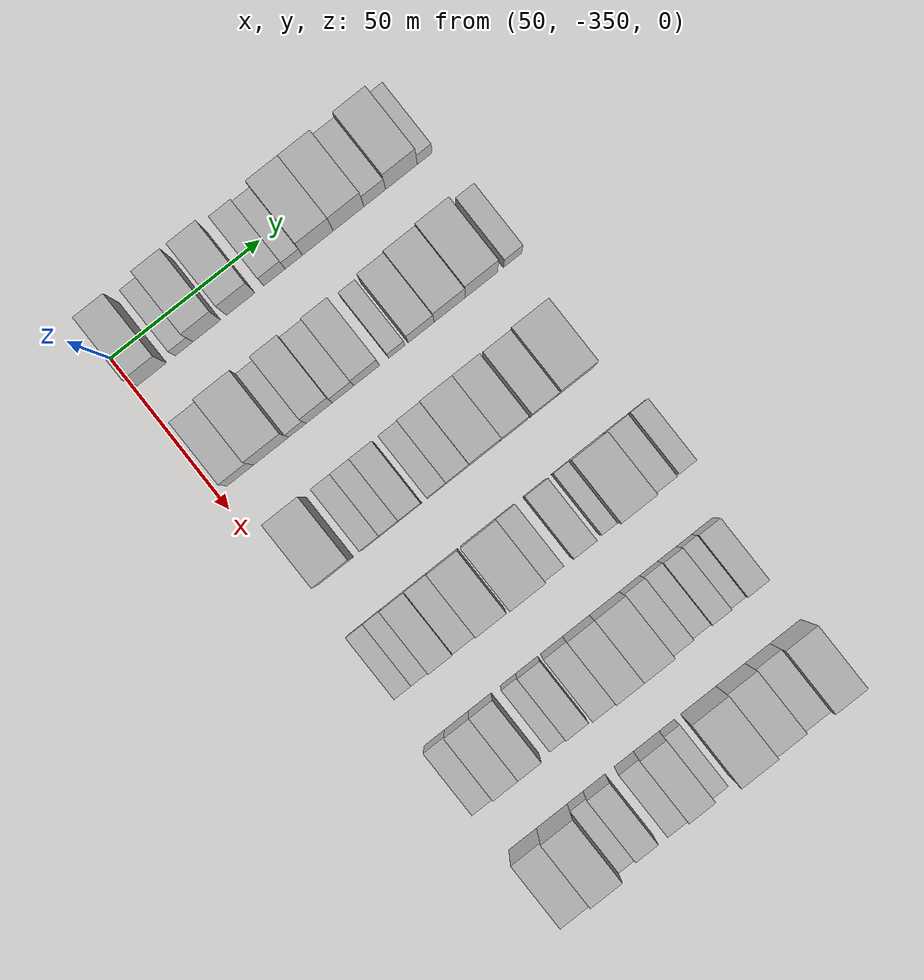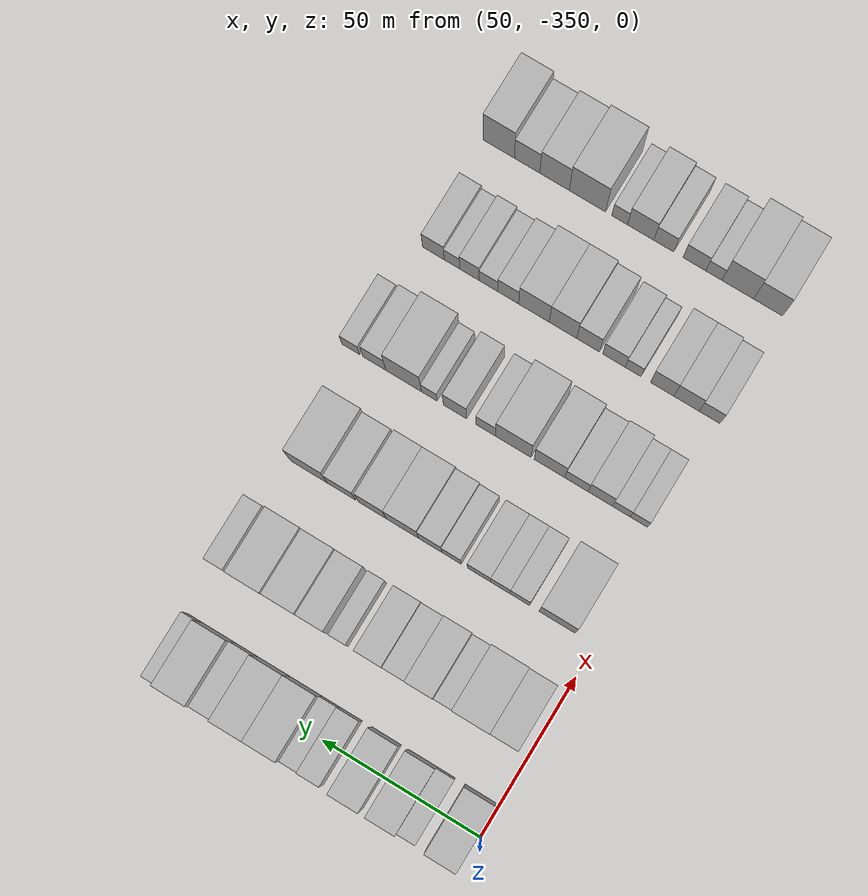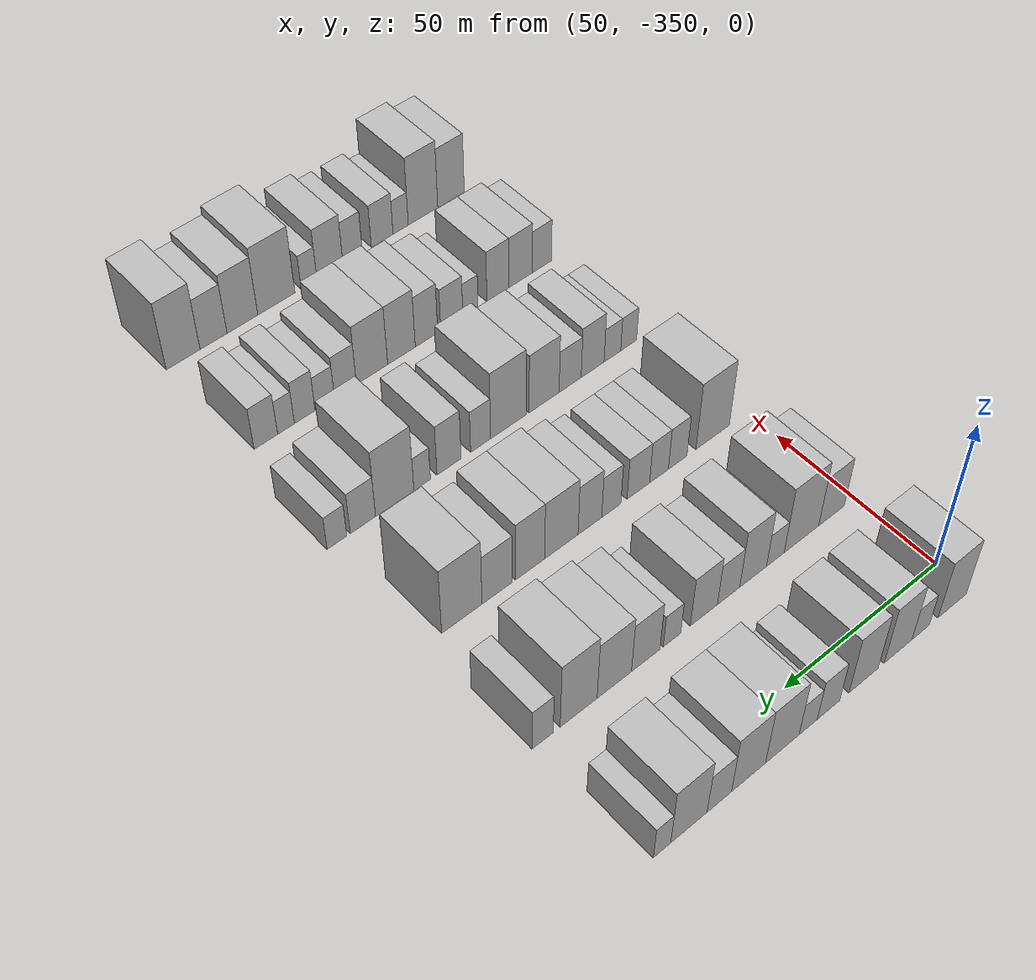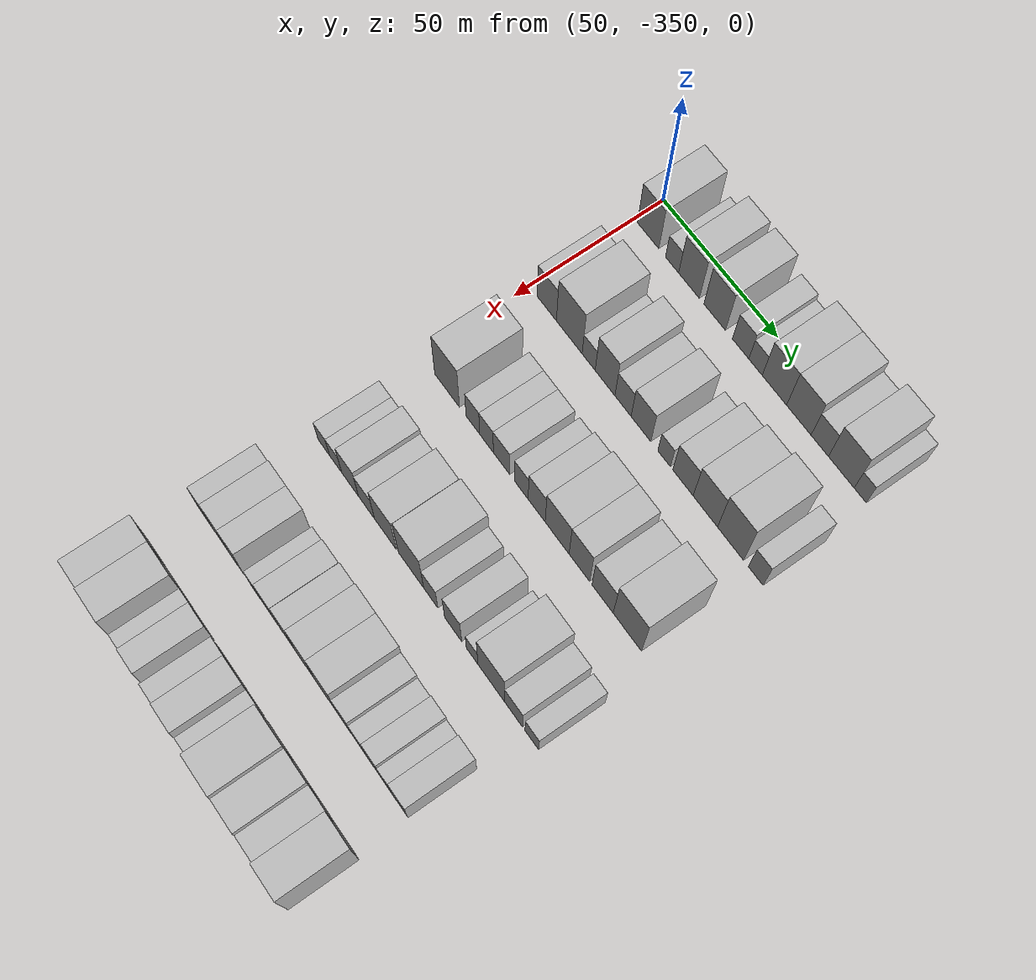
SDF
<sdf version="1.6">
 <world name="default">
  <model name="building_16">
   <static>1</static>
   <pose>50.0000 -343.8699 0 0.000000 0.000000 0.000000</pose>
   <link name="link">
    <pose>0 0 10.50 0 0 0</pose>
    <collision name="collision"><geometry><box><size>20.0000 9.6652 21.0000</size></box></geometry></collision>
    <visual name="visual">
     <cast_shadows>0</cast_shadows>
     <geometry><box><size>20.0000 9.6652 21.0000</size></box></geometry>
     <material>
      <script>
       <uri>model://HANNAS_wall/materials/scripts</uri>
       <uri>model://HANNAS_wall/materials/textures</uri>
       <name>vrc/HANNAS_wall</name>
      </script>
     </material>
    </visual>
   </link>
  </model>
  <model name="building_17">
   <static>1</static>
   <pose>50.0000 -333.1241 0 0.000000 0.000000 0.000000</pose>
   <link name="link">
    <pose>0 0 6.00 0 0 0</pose>
    <collision name="collision"><geometry><box><size>20.0000 5.8263 12.0000</size></box></geometry></collision>
    <visual name="visual">
     <cast_shadows>0</cast_shadows>
     <geometry><box><size>20.0000 5.8263 12.0000</size></box></geometry>
     <material>
      <script>
       <uri>model://HANNAS_wall/materials/scripts</uri>
       <uri>model://HANNAS_wall/materials/textures</uri>
       <name>vrc/HANNAS_wall</name>
      </script>
     </material>
    </visual>
   </link>
  </model>
  <model name="building_18">
   <static>1</static>
   <pose>50.0000 -325.6242 0 0.000000 0.000000 0.000000</pose>
   <link name="link">
    <pose>0 0 10.50 0 0 0</pose>
    <collision name="collision"><geometry><box><size>20.0000 9.1735 21.0000</size></box></geometry></collision>
    <visual name="visual">
     <cast_shadows>0</cast_shadows>
     <geometry><box><size>20.0000 9.1735 21.0000</size></box></geometry>
     <material>
      <script>
       <uri>model://HANNAS_wall/materials/scripts</uri>
       <uri>model://HANNAS_wall/materials/textures</uri>
       <name>vrc/HANNAS_wall</name>
      </script>
     </material>
    </visual>
   </link>
  </model>
  <model name="building_19">
   <static>1</static>
   <pose>50.0000 -314.3347 0 0.000000 0.000000 0.000000</pose>
   <link name="link">
    <pose>0 0 10.50 0 0 0</pose>
    <collision name="collision"><geometry><box><size>20.0000 9.4055 21.0000</size></box></geometry></collision>
    <visual name="visual">
     <cast_shadows>0</cast_shadows>
     <geometry><box><size>20.0000 9.4055 21.0000</size></box></geometry>
     <material>
      <script>
       <uri>model://HANNAS_wall/materials/scripts</uri>
       <uri>model://HANNAS_wall/materials/textures</uri>
       <name>vrc/HANNAS_wall</name>
      </script>
     </material>
    </visual>
   </link>
  </model>
  <model name="building_20">
   <static>1</static>
   <pose>50.0000 -303.0996 0 0.000000 0.000000 0.000000</pose>
   <link name="link">
    <pose>0 0 7.50 0 0 0</pose>
    <collision name="collision"><geometry><box><size>20.0000 7.0647 15.0000</size></box></geometry></collision>
    <visual name="visual">
     <cast_shadows>0</cast_shadows>
     <geometry><box><size>20.0000 7.0647 15.0000</size></box></geometry>
     <material>
      <script>
       <uri>model://HANNAS_wall/materials/scripts</uri>
       <uri>model://HANNAS_wall/materials/textures</uri>
       <name>vrc/HANNAS_wall</name>
      </script>
     </material>
    </visual>
   </link>
  </model>
  <model name="building_21">
   <static>1</static>
   <pose>50.0000 -296.7143 0 0.000000 0.000000 0.000000</pose>
   <link name="link">
    <pose>0 0 6.00 0 0 0</pose>
    <collision name="collision"><geometry><box><size>20.0000 5.7060 12.0000</size></box></geometry></collision>
    <visual name="visual">
     <cast_shadows>0</cast_shadows>
     <geometry><box><size>20.0000 5.7060 12.0000</size></box></geometry>
     <material>
      <script>
       <uri>model://HANNAS_wall/materials/scripts</uri>
       <uri>model://HANNAS_wall/materials/textures</uri>
       <name>vrc/HANNAS_wall</name>
      </script>
     </material>
    </visual>
   </link>
  </model>
  <model name="building_22">
   <static>1</static>
   <pose>50.0000 -288.7204 0 0.000000 0.000000 0.000000</pose>
   <link name="link">
    <pose>0 0 10.50 0 0 0</pose>
    <collision name="collision"><geometry><box><size>20.0000 10.2817 21.0000</size></box></geometry></collision>
    <visual name="visual">
     <cast_shadows>0</cast_shadows>
     <geometry><box><size>20.0000 10.2817 21.0000</size></box></geometry>
     <material>
      <script>
       <uri>model://HANNAS_wall/materials/scripts</uri>
       <uri>model://HANNAS_wall/materials/textures</uri>
       <name>vrc/HANNAS_wall</name>
      </script>
     </material>
    </visual>
   </link>
  </model>
  <model name="building_23">
   <static>1</static>
   <pose>50.0000 -278.4777 0 0.000000 0.000000 0.000000</pose>
   <link name="link">
    <pose>0 0 10.50 0 0 0</pose>
    <collision name="collision"><geometry><box><size>20.0000 10.2036 21.0000</size></box></geometry></collision>
    <visual name="visual">
     <cast_shadows>0</cast_shadows>
     <geometry><box><size>20.0000 10.2036 21.0000</size></box></geometry>
     <material>
      <script>
       <uri>model://HANNAS_wall/materials/scripts</uri>
       <uri>model://HANNAS_wall/materials/textures</uri>
       <name>vrc/HANNAS_wall</name>
      </script>
     </material>
    </visual>
   </link>
  </model>
  <model name="building_24">
   <static>1</static>
   <pose>50.0000 -269.7830 0 0.000000 0.000000 0.000000</pose>
   <link name="link">
    <pose>0 0 7.50 0 0 0</pose>
    <collision name="collision"><geometry><box><size>20.0000 7.1858 15.0000</size></box></geometry></collision>
    <visual name="visual">
     <cast_shadows>0</cast_shadows>
     <geometry><box><size>20.0000 7.1858 15.0000</size></box></geometry>
     <material>
      <script>
       <uri>model://HANNAS_wall/materials/scripts</uri>
       <uri>model://HANNAS_wall/materials/textures</uri>
       <name>vrc/HANNAS_wall</name>
      </script>
     </material>
    </visual>
   </link>
  </model>
  <model name="building_25">
   <static>1</static>
   <pose>50.0000 -260.9441 0 0.000000 0.000000 0.000000</pose>
   <link name="link">
    <pose>0 0 10.50 0 0 0</pose>
    <collision name="collision"><geometry><box><size>20.0000 10.4920 21.0000</size></box></geometry></collision>
    <visual name="visual">
     <cast_shadows>0</cast_shadows>
     <geometry><box><size>20.0000 10.4920 21.0000</size></box></geometry>
     <material>
      <script>
       <uri>model://HANNAS_wall/materials/scripts</uri>
       <uri>model://HANNAS_wall/materials/textures</uri>
       <name>vrc/HANNAS_wall</name>
      </script>
     </material>
    </visual>
   </link>
  </model>
  <model name="building_26">
   <static>1</static>
   <pose>50.0000 -253.2410 0 0.000000 0.000000 0.000000</pose>
   <link name="link">
    <pose>0 0 6.00 0 0 0</pose>
    <collision name="collision"><geometry><box><size>20.0000 4.9143 12.0000</size></box></geometry></collision>
    <visual name="visual">
     <cast_shadows>0</cast_shadows>
     <geometry><box><size>20.0000 4.9143 12.0000</size></box></geometry>
     <material>
      <script>
       <uri>model://HANNAS_wall/materials/scripts</uri>
       <uri>model://HANNAS_wall/materials/textures</uri>
       <name>vrc/HANNAS_wall</name>
      </script>
     </material>
    </visual>
   </link>
  </model>
  <model name="building_139">
   <static>1</static>
   <pose>85.0000 -342.0424 0 0.000000 0.000000 0.000000</pose>
   <link name="link">
    <pose>0 0 9.00 0 0 0</pose>
    <collision name="collision"><geometry><box><size>20.0000 8.7700 18.0000</size></box></geometry></collision>
    <visual name="visual">
     <cast_shadows>0</cast_shadows>
     <geometry><box><size>20.0000 8.7700 18.0000</size></box></geometry>
     <material>
      <script>
       <uri>model://HANNAS_wall/materials/scripts</uri>
       <uri>model://HANNAS_wall/materials/textures</uri>
       <name>vrc/HANNAS_wall</name>
      </script>
     </material>
    </visual>
   </link>
  </model>
  <model name="building_140">
   <static>1</static>
   <pose>85.0000 -331.8446 0 0.000000 0.000000 0.000000</pose>
   <link name="link">
    <pose>0 0 12.00 0 0 0</pose>
    <collision name="collision"><geometry><box><size>20.0000 11.6256 24.0000</size></box></geometry></collision>
    <visual name="visual">
     <cast_shadows>0</cast_shadows>
     <geometry><box><size>20.0000 11.6256 24.0000</size></box></geometry>
     <material>
      <script>
       <uri>model://HANNAS_wall/materials/scripts</uri>
       <uri>model://HANNAS_wall/materials/textures</uri>
       <name>vrc/HANNAS_wall</name>
      </script>
     </material>
    </visual>
   </link>
  </model>
  <model name="building_141">
   <static>1</static>
   <pose>85.0000 -323.1185 0 0.000000 0.000000 0.000000</pose>
   <link name="link">
    <pose>0 0 6.00 0 0 0</pose>
    <collision name="collision"><geometry><box><size>20.0000 5.8265 12.0000</size></box></geometry></collision>
    <visual name="visual">
     <cast_shadows>0</cast_shadows>
     <geometry><box><size>20.0000 5.8265 12.0000</size></box></geometry>
     <material>
      <script>
       <uri>model://HANNAS_wall/materials/scripts</uri>
       <uri>model://HANNAS_wall/materials/textures</uri>
       <name>vrc/HANNAS_wall</name>
      </script>
     </material>
    </visual>
   </link>
  </model>
  <model name="building_142">
   <static>1</static>
   <pose>85.0000 -315.8381 0 0.000000 0.000000 0.000000</pose>
   <link name="link">
    <pose>0 0 10.50 0 0 0</pose>
    <collision name="collision"><geometry><box><size>20.0000 8.7344 21.0000</size></box></geometry></collision>
    <visual name="visual">
     <cast_shadows>0</cast_shadows>
     <geometry><box><size>20.0000 8.7344 21.0000</size></box></geometry>
     <material>
      <script>
       <uri>model://HANNAS_wall/materials/scripts</uri>
       <uri>model://HANNAS_wall/materials/textures</uri>
       <name>vrc/HANNAS_wall</name>
      </script>
     </material>
    </visual>
   </link>
  </model>
  <model name="building_143">
   <static>1</static>
   <pose>85.0000 -307.9108 0 0.000000 0.000000 0.000000</pose>
   <link name="link">
    <pose>0 0 7.50 0 0 0</pose>
    <collision name="collision"><geometry><box><size>20.0000 7.1203 15.0000</size></box></geometry></collision>
    <visual name="visual">
     <cast_shadows>0</cast_shadows>
     <geometry><box><size>20.0000 7.1203 15.0000</size></box></geometry>
     <material>
      <script>
       <uri>model://HANNAS_wall/materials/scripts</uri>
       <uri>model://HANNAS_wall/materials/textures</uri>
       <name>vrc/HANNAS_wall</name>
      </script>
     </material>
    </visual>
   </link>
  </model>
  <model name="building_144">
   <static>1</static>
   <pose>85.0000 -300.0840 0 0.000000 0.000000 0.000000</pose>
   <link name="link">
    <pose>0 0 9.00 0 0 0</pose>
    <collision name="collision"><geometry><box><size>20.0000 8.5332 18.0000</size></box></geometry></collision>
    <visual name="visual">
     <cast_shadows>0</cast_shadows>
     <geometry><box><size>20.0000 8.5332 18.0000</size></box></geometry>
     <material>
      <script>
       <uri>model://HANNAS_wall/materials/scripts</uri>
       <uri>model://HANNAS_wall/materials/textures</uri>
       <name>vrc/HANNAS_wall</name>
      </script>
     </material>
    </visual>
   </link>
  </model>
  <model name="building_145">
   <static>1</static>
   <pose>85.0000 -290.1033 0 0.000000 0.000000 0.000000</pose>
   <link name="link">
    <pose>0 0 6.00 0 0 0</pose>
    <collision name="collision"><geometry><box><size>20.0000 5.4283 12.0000</size></box></geometry></collision>
    <visual name="visual">
     <cast_shadows>0</cast_shadows>
     <geometry><box><size>20.0000 5.4283 12.0000</size></box></geometry>
     <material>
      <script>
       <uri>model://HANNAS_wall/materials/scripts</uri>
       <uri>model://HANNAS_wall/materials/textures</uri>
       <name>vrc/HANNAS_wall</name>
      </script>
     </material>
    </visual>
   </link>
  </model>
  <model name="building_146">
   <static>1</static>
   <pose>85.0000 -282.0687 0 0.000000 0.000000 0.000000</pose>
   <link name="link">
    <pose>0 0 9.00 0 0 0</pose>
    <collision name="collision"><geometry><box><size>20.0000 8.6408 18.0000</size></box></geometry></collision>
    <visual name="visual">
     <cast_shadows>0</cast_shadows>
     <geometry><box><size>20.0000 8.6408 18.0000</size></box></geometry>
     <material>
      <script>
       <uri>model://HANNAS_wall/materials/scripts</uri>
       <uri>model://HANNAS_wall/materials/textures</uri>
       <name>vrc/HANNAS_wall</name>
      </script>
     </material>
    </visual>
   </link>
  </model>
  <model name="building_147">
   <static>1</static>
   <pose>85.0000 -272.6235 0 0.000000 0.000000 0.000000</pose>
   <link name="link">
    <pose>0 0 10.50 0 0 0</pose>
    <collision name="collision"><geometry><box><size>20.0000 10.2497 21.0000</size></box></geometry></collision>
    <visual name="visual">
     <cast_shadows>0</cast_shadows>
     <geometry><box><size>20.0000 10.2497 21.0000</size></box></geometry>
     <material>
      <script>
       <uri>model://HANNAS_wall/materials/scripts</uri>
       <uri>model://HANNAS_wall/materials/textures</uri>
       <name>vrc/HANNAS_wall</name>
      </script>
     </material>
    </visual>
   </link>
  </model>
  <model name="building_148">
   <static>1</static>
   <pose>85.0000 -262.1212 0 0.000000 0.000000 0.000000</pose>
   <link name="link">
    <pose>0 0 12.00 0 0 0</pose>
    <collision name="collision"><geometry><box><size>20.0000 10.7550 24.0000</size></box></geometry></collision>
    <visual name="visual">
     <cast_shadows>0</cast_shadows>
     <geometry><box><size>20.0000 10.7550 24.0000</size></box></geometry>
     <material>
      <script>
       <uri>model://HANNAS_wall/materials/scripts</uri>
       <uri>model://HANNAS_wall/materials/textures</uri>
       <name>vrc/HANNAS_wall</name>
      </script>
     </material>
    </visual>
   </link>
  </model>
  <model name="building_149">
   <static>1</static>
   <pose>85.0000 -251.7388 0 0.000000 0.000000 0.000000</pose>
   <link name="link">
    <pose>0 0 7.50 0 0 0</pose>
    <collision name="collision"><geometry><box><size>20.0000 6.0099 15.0000</size></box></geometry></collision>
    <visual name="visual">
     <cast_shadows>0</cast_shadows>
     <geometry><box><size>20.0000 6.0099 15.0000</size></box></geometry>
     <material>
      <script>
       <uri>model://HANNAS_wall/materials/scripts</uri>
       <uri>model://HANNAS_wall/materials/textures</uri>
       <name>vrc/HANNAS_wall</name>
      </script>
     </material>
    </visual>
   </link>
  </model>
  <model name="building_268">
   <static>1</static>
   <pose>120.0000 -337.8558 0 0.000000 0.000000 0.000000</pose>
   <link name="link">
    <pose>0 0 12.00 0 0 0</pose>
    <collision name="collision"><geometry><box><size>20.0000 11.3973 24.0000</size></box></geometry></collision>
    <visual name="visual">
     <cast_shadows>0</cast_shadows>
     <geometry><box><size>20.0000 11.3973 24.0000</size></box></geometry>
     <material>
      <script>
       <uri>model://HANNAS_wall/materials/scripts</uri>
       <uri>model://HANNAS_wall/materials/textures</uri>
       <name>vrc/HANNAS_wall</name>
      </script>
     </material>
    </visual>
   </link>
  </model>
  <model name="building_269">
   <static>1</static>
   <pose>120.0000 -326.0503 0 0.000000 0.000000 0.000000</pose>
   <link name="link">
    <pose>0 0 7.50 0 0 0</pose>
    <collision name="collision"><geometry><box><size>20.0000 6.2138 15.0000</size></box></geometry></collision>
    <visual name="visual">
     <cast_shadows>0</cast_shadows>
     <geometry><box><size>20.0000 6.2138 15.0000</size></box></geometry>
     <material>
      <script>
       <uri>model://HANNAS_wall/materials/scripts</uri>
       <uri>model://HANNAS_wall/materials/textures</uri>
       <name>vrc/HANNAS_wall</name>
      </script>
     </material>
    </visual>
   </link>
  </model>
  <model name="building_270">
   <static>1</static>
   <pose>120.0000 -319.8528 0 0.000000 0.000000 0.000000</pose>
   <link name="link">
    <pose>0 0 7.50 0 0 0</pose>
    <collision name="collision"><geometry><box><size>20.0000 6.1813 15.0000</size></box></geometry></collision>
    <visual name="visual">
     <cast_shadows>0</cast_shadows>
     <geometry><box><size>20.0000 6.1813 15.0000</size></box></geometry>
     <material>
      <script>
       <uri>model://HANNAS_wall/materials/scripts</uri>
       <uri>model://HANNAS_wall/materials/textures</uri>
       <name>vrc/HANNAS_wall</name>
      </script>
     </material>
    </visual>
   </link>
  </model>
  <model name="building_271">
   <static>1</static>
   <pose>120.0000 -313.0981 0 0.000000 0.000000 0.000000</pose>
   <link name="link">
    <pose>0 0 7.50 0 0 0</pose>
    <collision name="collision"><geometry><box><size>20.0000 7.3280 15.0000</size></box></geometry></collision>
    <visual name="visual">
     <cast_shadows>0</cast_shadows>
     <geometry><box><size>20.0000 7.3280 15.0000</size></box></geometry>
     <material>
      <script>
       <uri>model://HANNAS_wall/materials/scripts</uri>
       <uri>model://HANNAS_wall/materials/textures</uri>
       <name>vrc/HANNAS_wall</name>
      </script>
     </material>
    </visual>
   </link>
  </model>
  <model name="building_272">
   <static>1</static>
   <pose>120.0000 -304.3624 0 0.000000 0.000000 0.000000</pose>
   <link name="link">
    <pose>0 0 7.50 0 0 0</pose>
    <collision name="collision"><geometry><box><size>20.0000 6.1433 15.0000</size></box></geometry></collision>
    <visual name="visual">
     <cast_shadows>0</cast_shadows>
     <geometry><box><size>20.0000 6.1433 15.0000</size></box></geometry>
     <material>
      <script>
       <uri>model://HANNAS_wall/materials/scripts</uri>
       <uri>model://HANNAS_wall/materials/textures</uri>
       <name>vrc/HANNAS_wall</name>
      </script>
     </material>
    </visual>
   </link>
  </model>
  <model name="building_273">
   <static>1</static>
   <pose>120.0000 -297.5568 0 0.000000 0.000000 0.000000</pose>
   <link name="link">
    <pose>0 0 9.00 0 0 0</pose>
    <collision name="collision"><geometry><box><size>20.0000 7.4681 18.0000</size></box></geometry></collision>
    <visual name="visual">
     <cast_shadows>0</cast_shadows>
     <geometry><box><size>20.0000 7.4681 18.0000</size></box></geometry>
     <material>
      <script>
       <uri>model://HANNAS_wall/materials/scripts</uri>
       <uri>model://HANNAS_wall/materials/textures</uri>
       <name>vrc/HANNAS_wall</name>
      </script>
     </material>
    </visual>
   </link>
  </model>
  <model name="building_274">
   <static>1</static>
   <pose>120.0000 -288.6301 0 0.000000 0.000000 0.000000</pose>
   <link name="link">
    <pose>0 0 10.50 0 0 0</pose>
    <collision name="collision"><geometry><box><size>20.0000 10.3853 21.0000</size></box></geometry></collision>
    <visual name="visual">
     <cast_shadows>0</cast_shadows>
     <geometry><box><size>20.0000 10.3853 21.0000</size></box></geometry>
     <material>
      <script>
       <uri>model://HANNAS_wall/materials/scripts</uri>
       <uri>model://HANNAS_wall/materials/textures</uri>
       <name>vrc/HANNAS_wall</name>
      </script>
     </material>
    </visual>
   </link>
  </model>
  <model name="building_275">
   <static>1</static>
   <pose>120.0000 -279.0228 0 0.000000 0.000000 0.000000</pose>
   <link name="link">
    <pose>0 0 10.50 0 0 0</pose>
    <collision name="collision"><geometry><box><size>20.0000 8.8292 21.0000</size></box></geometry></collision>
    <visual name="visual">
     <cast_shadows>0</cast_shadows>
     <geometry><box><size>20.0000 8.8292 21.0000</size></box></geometry>
     <material>
      <script>
       <uri>model://HANNAS_wall/materials/scripts</uri>
       <uri>model://HANNAS_wall/materials/textures</uri>
       <name>vrc/HANNAS_wall</name>
      </script>
     </material>
    </visual>
   </link>
  </model>
  <model name="building_276">
   <static>1</static>
   <pose>120.0000 -269.1109 0 0.000000 0.000000 0.000000</pose>
   <link name="link">
    <pose>0 0 9.00 0 0 0</pose>
    <collision name="collision"><geometry><box><size>20.0000 8.9947 18.0000</size></box></geometry></collision>
    <visual name="visual">
     <cast_shadows>0</cast_shadows>
     <geometry><box><size>20.0000 8.9947 18.0000</size></box></geometry>
     <material>
      <script>
       <uri>model://HANNAS_wall/materials/scripts</uri>
       <uri>model://HANNAS_wall/materials/textures</uri>
       <name>vrc/HANNAS_wall</name>
      </script>
     </material>
    </visual>
   </link>
  </model>
  <model name="building_277">
   <static>1</static>
   <pose>120.0000 -258.7090 0 0.000000 0.000000 0.000000</pose>
   <link name="link">
    <pose>0 0 12.00 0 0 0</pose>
    <collision name="collision"><geometry><box><size>20.0000 11.8091 24.0000</size></box></geometry></collision>
    <visual name="visual">
     <cast_shadows>0</cast_shadows>
     <geometry><box><size>20.0000 11.8091 24.0000</size></box></geometry>
     <material>
      <script>
       <uri>model://HANNAS_wall/materials/scripts</uri>
       <uri>model://HANNAS_wall/materials/textures</uri>
       <name>vrc/HANNAS_wall</name>
      </script>
     </material>
    </visual>
   </link>
  </model>
  <model name="building_388">
   <static>1</static>
   <pose>155.0000 -343.0023 0 0.000000 0.000000 0.000000</pose>
   <link name="link">
    <pose>0 0 6.00 0 0 0</pose>
    <collision name="collision"><geometry><box><size>20.0000 5.4839 12.0000</size></box></geometry></collision>
    <visual name="visual">
     <cast_shadows>0</cast_shadows>
     <geometry><box><size>20.0000 5.4839 12.0000</size></box></geometry>
     <material>
      <script>
       <uri>model://HANNAS_wall/materials/scripts</uri>
       <uri>model://HANNAS_wall/materials/textures</uri>
       <name>vrc/HANNAS_wall</name>
      </script>
     </material>
    </visual>
   </link>
  </model>
  <model name="building_389">
   <static>1</static>
   <pose>155.0000 -337.4027 0 0.000000 0.000000 0.000000</pose>
   <link name="link">
    <pose>0 0 6.00 0 0 0</pose>
    <collision name="collision"><geometry><box><size>20.0000 5.7154 12.0000</size></box></geometry></collision>
    <visual name="visual">
     <cast_shadows>0</cast_shadows>
     <geometry><box><size>20.0000 5.7154 12.0000</size></box></geometry>
     <material>
      <script>
       <uri>model://HANNAS_wall/materials/scripts</uri>
       <uri>model://HANNAS_wall/materials/textures</uri>
       <name>vrc/HANNAS_wall</name>
      </script>
     </material>
    </visual>
   </link>
  </model>
  <model name="building_390">
   <static>1</static>
   <pose>155.0000 -330.6637 0 0.000000 0.000000 0.000000</pose>
   <link name="link">
    <pose>0 0 9.00 0 0 0</pose>
    <collision name="collision"><geometry><box><size>20.0000 7.7626 18.0000</size></box></geometry></collision>
    <visual name="visual">
     <cast_shadows>0</cast_shadows>
     <geometry><box><size>20.0000 7.7626 18.0000</size></box></geometry>
     <material>
      <script>
       <uri>model://HANNAS_wall/materials/scripts</uri>
       <uri>model://HANNAS_wall/materials/textures</uri>
       <name>vrc/HANNAS_wall</name>
      </script>
     </material>
    </visual>
   </link>
  </model>
  <model name="building_391">
   <static>1</static>
   <pose>155.0000 -323.1004 0 0.000000 0.000000 0.000000</pose>
   <link name="link">
    <pose>0 0 7.50 0 0 0</pose>
    <collision name="collision"><geometry><box><size>20.0000 7.3639 15.0000</size></box></geometry></collision>
    <visual name="visual">
     <cast_shadows>0</cast_shadows>
     <geometry><box><size>20.0000 7.3639 15.0000</size></box></geometry>
     <material>
      <script>
       <uri>model://HANNAS_wall/materials/scripts</uri>
       <uri>model://HANNAS_wall/materials/textures</uri>
       <name>vrc/HANNAS_wall</name>
      </script>
     </material>
    </visual>
   </link>
  </model>
  <model name="building_392">
   <static>1</static>
   <pose>155.0000 -314.4829 0 0.000000 0.000000 0.000000</pose>
   <link name="link">
    <pose>0 0 10.50 0 0 0</pose>
    <collision name="collision"><geometry><box><size>20.0000 9.8713 21.0000</size></box></geometry></collision>
    <visual name="visual">
     <cast_shadows>0</cast_shadows>
     <geometry><box><size>20.0000 9.8713 21.0000</size></box></geometry>
     <material>
      <script>
       <uri>model://HANNAS_wall/materials/scripts</uri>
       <uri>model://HANNAS_wall/materials/textures</uri>
       <name>vrc/HANNAS_wall</name>
      </script>
     </material>
    </visual>
   </link>
  </model>
  <model name="building_393">
   <static>1</static>
   <pose>155.0000 -302.8587 0 0.000000 0.000000 0.000000</pose>
   <link name="link">
    <pose>0 0 12.00 0 0 0</pose>
    <collision name="collision"><geometry><box><size>20.0000 11.3772 24.0000</size></box></geometry></collision>
    <visual name="visual">
     <cast_shadows>0</cast_shadows>
     <geometry><box><size>20.0000 11.3772 24.0000</size></box></geometry>
     <material>
      <script>
       <uri>model://HANNAS_wall/materials/scripts</uri>
       <uri>model://HANNAS_wall/materials/textures</uri>
       <name>vrc/HANNAS_wall</name>
      </script>
     </material>
    </visual>
   </link>
  </model>
  <model name="building_394">
   <static>1</static>
   <pose>155.0000 -294.0227 0 0.000000 0.000000 0.000000</pose>
   <link name="link">
    <pose>0 0 7.50 0 0 0</pose>
    <collision name="collision"><geometry><box><size>20.0000 6.2948 15.0000</size></box></geometry></collision>
    <visual name="visual">
     <cast_shadows>0</cast_shadows>
     <geometry><box><size>20.0000 6.2948 15.0000</size></box></geometry>
     <material>
      <script>
       <uri>model://HANNAS_wall/materials/scripts</uri>
       <uri>model://HANNAS_wall/materials/textures</uri>
       <name>vrc/HANNAS_wall</name>
      </script>
     </material>
    </visual>
   </link>
  </model>
  <model name="building_395">
   <static>1</static>
   <pose>155.0000 -284.1289 0 0.000000 0.000000 0.000000</pose>
   <link name="link">
    <pose>0 0 9.00 0 0 0</pose>
    <collision name="collision"><geometry><box><size>20.0000 7.4928 18.0000</size></box></geometry></collision>
    <visual name="visual">
     <cast_shadows>0</cast_shadows>
     <geometry><box><size>20.0000 7.4928 18.0000</size></box></geometry>
     <material>
      <script>
       <uri>model://HANNAS_wall/materials/scripts</uri>
       <uri>model://HANNAS_wall/materials/textures</uri>
       <name>vrc/HANNAS_wall</name>
      </script>
     </material>
    </visual>
   </link>
  </model>
  <model name="building_396">
   <static>1</static>
   <pose>155.0000 -275.8568 0 0.000000 0.000000 0.000000</pose>
   <link name="link">
    <pose>0 0 6.00 0 0 0</pose>
    <collision name="collision"><geometry><box><size>20.0000 5.0515 12.0000</size></box></geometry></collision>
    <visual name="visual">
     <cast_shadows>0</cast_shadows>
     <geometry><box><size>20.0000 5.0515 12.0000</size></box></geometry>
     <material>
      <script>
       <uri>model://HANNAS_wall/materials/scripts</uri>
       <uri>model://HANNAS_wall/materials/textures</uri>
       <name>vrc/HANNAS_wall</name>
      </script>
     </material>
    </visual>
   </link>
  </model>
  <model name="building_397">
   <static>1</static>
   <pose>155.0000 -267.5614 0 0.000000 0.000000 0.000000</pose>
   <link name="link">
    <pose>0 0 12.00 0 0 0</pose>
    <collision name="collision"><geometry><box><size>20.0000 11.5393 24.0000</size></box></geometry></collision>
    <visual name="visual">
     <cast_shadows>0</cast_shadows>
     <geometry><box><size>20.0000 11.5393 24.0000</size></box></geometry>
     <material>
      <script>
       <uri>model://HANNAS_wall/materials/scripts</uri>
       <uri>model://HANNAS_wall/materials/textures</uri>
       <name>vrc/HANNAS_wall</name>
      </script>
     </material>
    </visual>
   </link>
  </model>
  <model name="building_398">
   <static>1</static>
   <pose>155.0000 -258.0542 0 0.000000 0.000000 0.000000</pose>
   <link name="link">
    <pose>0 0 7.50 0 0 0</pose>
    <collision name="collision"><geometry><box><size>20.0000 7.4750 15.0000</size></box></geometry></collision>
    <visual name="visual">
     <cast_shadows>0</cast_shadows>
     <geometry><box><size>20.0000 7.4750 15.0000</size></box></geometry>
     <material>
      <script>
       <uri>model://HANNAS_wall/materials/scripts</uri>
       <uri>model://HANNAS_wall/materials/textures</uri>
       <name>vrc/HANNAS_wall</name>
      </script>
     </material>
    </visual>
   </link>
  </model>
  <model name="building_399">
   <static>1</static>
   <pose>155.0000 -250.4406 0 0.000000 0.000000 0.000000</pose>
   <link name="link">
    <pose>0 0 6.00 0 0 0</pose>
    <collision name="collision"><geometry><box><size>20.0000 5.7523 12.0000</size></box></geometry></collision>
    <visual name="visual">
     <cast_shadows>0</cast_shadows>
     <geometry><box><size>20.0000 5.7523 12.0000</size></box></geometry>
     <material>
      <script>
       <uri>model://HANNAS_wall/materials/scripts</uri>
       <uri>model://HANNAS_wall/materials/textures</uri>
       <name>vrc/HANNAS_wall</name>
      </script>
     </material>
    </visual>
   </link>
  </model>
  <model name="building_512">
   <static>1</static>
   <pose>190.0000 -344.8488 0 0.000000 0.000000 0.000000</pose>
   <link name="link">
    <pose>0 0 7.50 0 0 0</pose>
    <collision name="collision"><geometry><box><size>20.0000 6.6565 15.0000</size></box></geometry></collision>
    <visual name="visual">
     <cast_shadows>0</cast_shadows>
     <geometry><box><size>20.0000 6.6565 15.0000</size></box></geometry>
     <material>
      <script>
       <uri>model://HANNAS_wall/materials/scripts</uri>
       <uri>model://HANNAS_wall/materials/textures</uri>
       <name>vrc/HANNAS_wall</name>
      </script>
     </material>
    </visual>
   </link>
  </model>
  <model name="building_513">
   <static>1</static>
   <pose>190.0000 -337.4887 0 0.000000 0.000000 0.000000</pose>
   <link name="link">
    <pose>0 0 9.00 0 0 0</pose>
    <collision name="collision"><geometry><box><size>20.0000 8.0636 18.0000</size></box></geometry></collision>
    <visual name="visual">
     <cast_shadows>0</cast_shadows>
     <geometry><box><size>20.0000 8.0636 18.0000</size></box></geometry>
     <material>
      <script>
       <uri>model://HANNAS_wall/materials/scripts</uri>
       <uri>model://HANNAS_wall/materials/textures</uri>
       <name>vrc/HANNAS_wall</name>
      </script>
     </material>
    </visual>
   </link>
  </model>
  <model name="building_514">
   <static>1</static>
   <pose>190.0000 -329.6993 0 0.000000 0.000000 0.000000</pose>
   <link name="link">
    <pose>0 0 9.00 0 0 0</pose>
    <collision name="collision"><geometry><box><size>20.0000 7.5153 18.0000</size></box></geometry></collision>
    <visual name="visual">
     <cast_shadows>0</cast_shadows>
     <geometry><box><size>20.0000 7.5153 18.0000</size></box></geometry>
     <material>
      <script>
       <uri>model://HANNAS_wall/materials/scripts</uri>
       <uri>model://HANNAS_wall/materials/textures</uri>
       <name>vrc/HANNAS_wall</name>
      </script>
     </material>
    </visual>
   </link>
  </model>
  <model name="building_515">
   <static>1</static>
   <pose>190.0000 -320.4052 0 0.000000 0.000000 0.000000</pose>
   <link name="link">
    <pose>0 0 6.00 0 0 0</pose>
    <collision name="collision"><geometry><box><size>20.0000 5.0729 12.0000</size></box></geometry></collision>
    <visual name="visual">
     <cast_shadows>0</cast_shadows>
     <geometry><box><size>20.0000 5.0729 12.0000</size></box></geometry>
     <material>
      <script>
       <uri>model://HANNAS_wall/materials/scripts</uri>
       <uri>model://HANNAS_wall/materials/textures</uri>
       <name>vrc/HANNAS_wall</name>
      </script>
     </material>
    </visual>
   </link>
  </model>
  <model name="building_516">
   <static>1</static>
   <pose>190.0000 -314.2128 0 0.000000 0.000000 0.000000</pose>
   <link name="link">
    <pose>0 0 7.50 0 0 0</pose>
    <collision name="collision"><geometry><box><size>20.0000 7.3118 15.0000</size></box></geometry></collision>
    <visual name="visual">
     <cast_shadows>0</cast_shadows>
     <geometry><box><size>20.0000 7.3118 15.0000</size></box></geometry>
     <material>
      <script>
       <uri>model://HANNAS_wall/materials/scripts</uri>
       <uri>model://HANNAS_wall/materials/textures</uri>
       <name>vrc/HANNAS_wall</name>
      </script>
     </material>
    </visual>
   </link>
  </model>
  <model name="building_517">
   <static>1</static>
   <pose>190.0000 -305.9000 0 0.000000 0.000000 0.000000</pose>
   <link name="link">
    <pose>0 0 9.00 0 0 0</pose>
    <collision name="collision"><geometry><box><size>20.0000 7.3138 18.0000</size></box></geometry></collision>
    <visual name="visual">
     <cast_shadows>0</cast_shadows>
     <geometry><box><size>20.0000 7.3138 18.0000</size></box></geometry>
     <material>
      <script>
       <uri>model://HANNAS_wall/materials/scripts</uri>
       <uri>model://HANNAS_wall/materials/textures</uri>
       <name>vrc/HANNAS_wall</name>
      </script>
     </material>
    </visual>
   </link>
  </model>
  <model name="building_518">
   <static>1</static>
   <pose>190.0000 -297.8016 0 0.000000 0.000000 0.000000</pose>
   <link name="link">
    <pose>0 0 10.50 0 0 0</pose>
    <collision name="collision"><geometry><box><size>20.0000 8.8830 21.0000</size></box></geometry></collision>
    <visual name="visual">
     <cast_shadows>0</cast_shadows>
     <geometry><box><size>20.0000 8.8830 21.0000</size></box></geometry>
     <material>
      <script>
       <uri>model://HANNAS_wall/materials/scripts</uri>
       <uri>model://HANNAS_wall/materials/textures</uri>
       <name>vrc/HANNAS_wall</name>
      </script>
     </material>
    </visual>
   </link>
  </model>
  <model name="building_519">
   <static>1</static>
   <pose>190.0000 -288.4005 0 0.000000 0.000000 0.000000</pose>
   <link name="link">
    <pose>0 0 10.50 0 0 0</pose>
    <collision name="collision"><geometry><box><size>20.0000 9.9192 21.0000</size></box></geometry></collision>
    <visual name="visual">
     <cast_shadows>0</cast_shadows>
     <geometry><box><size>20.0000 9.9192 21.0000</size></box></geometry>
     <material>
      <script>
       <uri>model://HANNAS_wall/materials/scripts</uri>
       <uri>model://HANNAS_wall/materials/textures</uri>
       <name>vrc/HANNAS_wall</name>
      </script>
     </material>
    </visual>
   </link>
  </model>
  <model name="building_520">
   <static>1</static>
   <pose>190.0000 -280.0370 0 0.000000 0.000000 0.000000</pose>
   <link name="link">
    <pose>0 0 7.50 0 0 0</pose>
    <collision name="collision"><geometry><box><size>20.0000 6.8077 15.0000</size></box></geometry></collision>
    <visual name="visual">
     <cast_shadows>0</cast_shadows>
     <geometry><box><size>20.0000 6.8077 15.0000</size></box></geometry>
     <material>
      <script>
       <uri>model://HANNAS_wall/materials/scripts</uri>
       <uri>model://HANNAS_wall/materials/textures</uri>
       <name>vrc/HANNAS_wall</name>
      </script>
     </material>
    </visual>
   </link>
  </model>
  <model name="building_521">
   <static>1</static>
   <pose>190.0000 -273.6483 0 0.000000 0.000000 0.000000</pose>
   <link name="link">
    <pose>0 0 6.00 0 0 0</pose>
    <collision name="collision"><geometry><box><size>20.0000 5.9697 12.0000</size></box></geometry></collision>
    <visual name="visual">
     <cast_shadows>0</cast_shadows>
     <geometry><box><size>20.0000 5.9697 12.0000</size></box></geometry>
     <material>
      <script>
       <uri>model://HANNAS_wall/materials/scripts</uri>
       <uri>model://HANNAS_wall/materials/textures</uri>
       <name>vrc/HANNAS_wall</name>
      </script>
     </material>
    </visual>
   </link>
  </model>
  <model name="building_522">
   <static>1</static>
   <pose>190.0000 -267.5186 0 0.000000 0.000000 0.000000</pose>
   <link name="link">
    <pose>0 0 7.50 0 0 0</pose>
    <collision name="collision"><geometry><box><size>20.0000 6.2898 15.0000</size></box></geometry></collision>
    <visual name="visual">
     <cast_shadows>0</cast_shadows>
     <geometry><box><size>20.0000 6.2898 15.0000</size></box></geometry>
     <material>
      <script>
       <uri>model://HANNAS_wall/materials/scripts</uri>
       <uri>model://HANNAS_wall/materials/textures</uri>
       <name>vrc/HANNAS_wall</name>
      </script>
     </material>
    </visual>
   </link>
  </model>
  <model name="building_523">
   <static>1</static>
   <pose>190.0000 -261.8410 0 0.000000 0.000000 0.000000</pose>
   <link name="link">
    <pose>0 0 6.00 0 0 0</pose>
    <collision name="collision"><geometry><box><size>20.0000 5.0654 12.0000</size></box></geometry></collision>
    <visual name="visual">
     <cast_shadows>0</cast_shadows>
     <geometry><box><size>20.0000 5.0654 12.0000</size></box></geometry>
     <material>
      <script>
       <uri>model://HANNAS_wall/materials/scripts</uri>
       <uri>model://HANNAS_wall/materials/textures</uri>
       <name>vrc/HANNAS_wall</name>
      </script>
     </material>
    </visual>
   </link>
  </model>
  <model name="building_524">
   <static>1</static>
   <pose>190.0000 -255.7845 0 0.000000 0.000000 0.000000</pose>
   <link name="link">
    <pose>0 0 7.50 0 0 0</pose>
    <collision name="collision"><geometry><box><size>20.0000 7.0475 15.0000</size></box></geometry></collision>
    <visual name="visual">
     <cast_shadows>0</cast_shadows>
     <geometry><box><size>20.0000 7.0475 15.0000</size></box></geometry>
     <material>
      <script>
       <uri>model://HANNAS_wall/materials/scripts</uri>
       <uri>model://HANNAS_wall/materials/textures</uri>
       <name>vrc/HANNAS_wall</name>
      </script>
     </material>
    </visual>
   </link>
  </model>
  <model name="building_641">
   <static>1</static>
   <pose>225.0000 -343.1574 0 0.000000 0.000000 0.000000</pose>
   <link name="link">
    <pose>0 0 10.50 0 0 0</pose>
    <collision name="collision"><geometry><box><size>20.0000 9.3038 21.0000</size></box></geometry></collision>
    <visual name="visual">
     <cast_shadows>0</cast_shadows>
     <geometry><box><size>20.0000 9.3038 21.0000</size></box></geometry>
     <material>
      <script>
       <uri>model://HANNAS_wall/materials/scripts</uri>
       <uri>model://HANNAS_wall/materials/textures</uri>
       <name>vrc/HANNAS_wall</name>
      </script>
     </material>
    </visual>
   </link>
  </model>
  <model name="building_642">
   <static>1</static>
   <pose>225.0000 -333.4097 0 0.000000 0.000000 0.000000</pose>
   <link name="link">
    <pose>0 0 12.00 0 0 0</pose>
    <collision name="collision"><geometry><box><size>20.0000 10.1916 24.0000</size></box></geometry></collision>
    <visual name="visual">
     <cast_shadows>0</cast_shadows>
     <geometry><box><size>20.0000 10.1916 24.0000</size></box></geometry>
     <material>
      <script>
       <uri>model://HANNAS_wall/materials/scripts</uri>
       <uri>model://HANNAS_wall/materials/textures</uri>
       <name>vrc/HANNAS_wall</name>
      </script>
     </material>
    </visual>
   </link>
  </model>
  <model name="building_643">
   <static>1</static>
   <pose>225.0000 -325.7070 0 0.000000 0.000000 0.000000</pose>
   <link name="link">
    <pose>0 0 6.00 0 0 0</pose>
    <collision name="collision"><geometry><box><size>20.0000 5.2137 12.0000</size></box></geometry></collision>
    <visual name="visual">
     <cast_shadows>0</cast_shadows>
     <geometry><box><size>20.0000 5.2137 12.0000</size></box></geometry>
     <material>
      <script>
       <uri>model://HANNAS_wall/materials/scripts</uri>
       <uri>model://HANNAS_wall/materials/textures</uri>
       <name>vrc/HANNAS_wall</name>
      </script>
     </material>
    </visual>
   </link>
  </model>
  <model name="building_644">
   <static>1</static>
   <pose>225.0000 -319.4386 0 0.000000 0.000000 0.000000</pose>
   <link name="link">
    <pose>0 0 7.50 0 0 0</pose>
    <collision name="collision"><geometry><box><size>20.0000 7.3230 15.0000</size></box></geometry></collision>
    <visual name="visual">
     <cast_shadows>0</cast_shadows>
     <geometry><box><size>20.0000 7.3230 15.0000</size></box></geometry>
     <material>
      <script>
       <uri>model://HANNAS_wall/materials/scripts</uri>
       <uri>model://HANNAS_wall/materials/textures</uri>
       <name>vrc/HANNAS_wall</name>
      </script>
     </material>
    </visual>
   </link>
  </model>
  <model name="building_645">
   <static>1</static>
   <pose>225.0000 -309.5593 0 0.000000 0.000000 0.000000</pose>
   <link name="link">
    <pose>0 0 7.50 0 0 0</pose>
    <collision name="collision"><geometry><box><size>20.0000 6.4356 15.0000</size></box></geometry></collision>
    <visual name="visual">
     <cast_shadows>0</cast_shadows>
     <geometry><box><size>20.0000 6.4356 15.0000</size></box></geometry>
     <material>
      <script>
       <uri>model://HANNAS_wall/materials/scripts</uri>
       <uri>model://HANNAS_wall/materials/textures</uri>
       <name>vrc/HANNAS_wall</name>
      </script>
     </material>
    </visual>
   </link>
  </model>
  <model name="building_646">
   <static>1</static>
   <pose>225.0000 -302.0747 0 0.000000 0.000000 0.000000</pose>
   <link name="link">
    <pose>0 0 9.00 0 0 0</pose>
    <collision name="collision"><geometry><box><size>20.0000 8.5336 18.0000</size></box></geometry></collision>
    <visual name="visual">
     <cast_shadows>0</cast_shadows>
     <geometry><box><size>20.0000 8.5336 18.0000</size></box></geometry>
     <material>
      <script>
       <uri>model://HANNAS_wall/materials/scripts</uri>
       <uri>model://HANNAS_wall/materials/textures</uri>
       <name>vrc/HANNAS_wall</name>
      </script>
     </material>
    </visual>
   </link>
  </model>
  <model name="building_647">
   <static>1</static>
   <pose>225.0000 -295.2518 0 0.000000 0.000000 0.000000</pose>
   <link name="link">
    <pose>0 0 6.00 0 0 0</pose>
    <collision name="collision"><geometry><box><size>20.0000 5.1124 12.0000</size></box></geometry></collision>
    <visual name="visual">
     <cast_shadows>0</cast_shadows>
     <geometry><box><size>20.0000 5.1124 12.0000</size></box></geometry>
     <material>
      <script>
       <uri>model://HANNAS_wall/materials/scripts</uri>
       <uri>model://HANNAS_wall/materials/textures</uri>
       <name>vrc/HANNAS_wall</name>
      </script>
     </material>
    </visual>
   </link>
  </model>
  <model name="building_648">
   <static>1</static>
   <pose>225.0000 -284.7845 0 0.000000 0.000000 0.000000</pose>
   <link name="link">
    <pose>0 0 12.00 0 0 0</pose>
    <collision name="collision"><geometry><box><size>20.0000 11.8222 24.0000</size></box></geometry></collision>
    <visual name="visual">
     <cast_shadows>0</cast_shadows>
     <geometry><box><size>20.0000 11.8222 24.0000</size></box></geometry>
     <material>
      <script>
       <uri>model://HANNAS_wall/materials/scripts</uri>
       <uri>model://HANNAS_wall/materials/textures</uri>
       <name>vrc/HANNAS_wall</name>
      </script>
     </material>
    </visual>
   </link>
  </model>
  <model name="building_649">
   <static>1</static>
   <pose>225.0000 -274.0660 0 0.000000 0.000000 0.000000</pose>
   <link name="link">
    <pose>0 0 10.50 0 0 0</pose>
    <collision name="collision"><geometry><box><size>20.0000 9.6149 21.0000</size></box></geometry></collision>
    <visual name="visual">
     <cast_shadows>0</cast_shadows>
     <geometry><box><size>20.0000 9.6149 21.0000</size></box></geometry>
     <material>
      <script>
       <uri>model://HANNAS_wall/materials/scripts</uri>
       <uri>model://HANNAS_wall/materials/textures</uri>
       <name>vrc/HANNAS_wall</name>
      </script>
     </material>
    </visual>
   </link>
  </model>
  <model name="building_650">
   <static>1</static>
   <pose>225.0000 -265.1207 0 0.000000 0.000000 0.000000</pose>
   <link name="link">
    <pose>0 0 9.00 0 0 0</pose>
    <collision name="collision"><geometry><box><size>20.0000 8.2756 18.0000</size></box></geometry></collision>
    <visual name="visual">
     <cast_shadows>0</cast_shadows>
     <geometry><box><size>20.0000 8.2756 18.0000</size></box></geometry>
     <material>
      <script>
       <uri>model://HANNAS_wall/materials/scripts</uri>
       <uri>model://HANNAS_wall/materials/textures</uri>
       <name>vrc/HANNAS_wall</name>
      </script>
     </material>
    </visual>
   </link>
  </model>
  <model name="building_651">
   <static>1</static>
   <pose>225.0000 -255.8556 0 0.000000 0.000000 0.000000</pose>
   <link name="link">
    <pose>0 0 12.00 0 0 0</pose>
    <collision name="collision"><geometry><box><size>20.0000 10.2546 24.0000</size></box></geometry></collision>
    <visual name="visual">
     <cast_shadows>0</cast_shadows>
     <geometry><box><size>20.0000 10.2546 24.0000</size></box></geometry>
     <material>
      <script>
       <uri>model://HANNAS_wall/materials/scripts</uri>
       <uri>model://HANNAS_wall/materials/textures</uri>
       <name>vrc/HANNAS_wall</name>
      </script>
     </material>
    </visual>
   </link>
  </model>
 </world>
</sdf>
